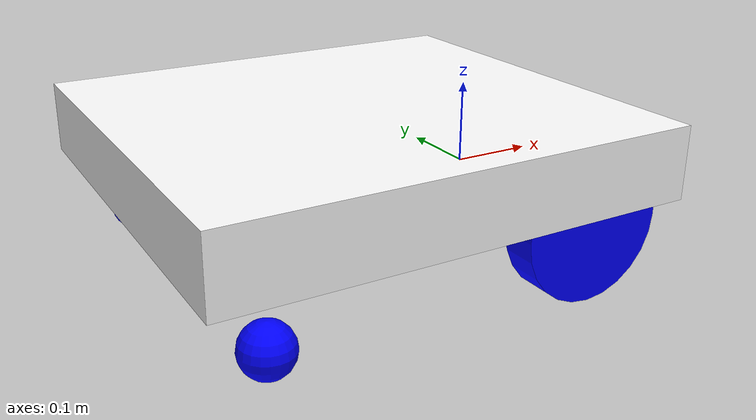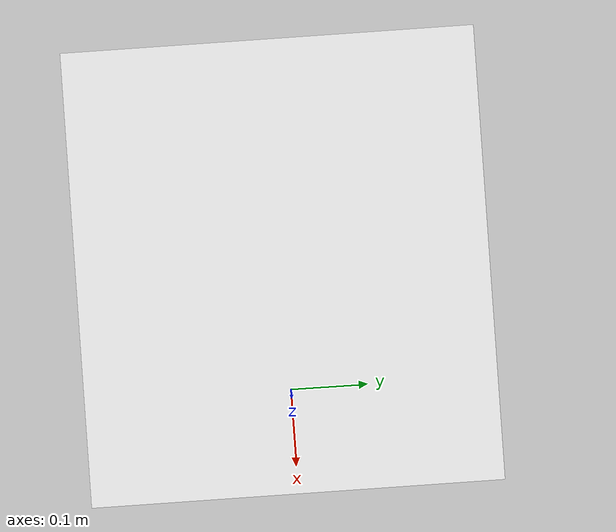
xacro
<?xml version="1.0"?>
<robot xmlns:xacro="http://www.ros.org/wiki/xacro">

    <xacro:include filename="inertial_macros.xacro"/>

    <material name="white">
        <color rgba="1 1 1 1" />
    </material>

    <material name="orange">
        <color rgba="1 0.3 0.1 1"/>
    </material>

    <material name="blue">
        <color rgba="0 0 1 1"/>
    </material>

    <material name="black">
        <color rgba="0 0 0 1"/>
    </material>

    <material name="red">
        <color rgba="1 0 0 1"/>
    </material>

    <!-- BASE LINK -->
    <link name="base_link">

    </link>

    <!-- CHASSIS LINK -->
    <joint name="chassis_joint" type="fixed">
        <parent link="base_link"/>
        <child link="chassis"/>
        <origin xyz="-0.16 0 0"/>
    </joint>

    <link name="chassis">
        <visual>
            <origin xyz="0 0 0.055"/>
            <geometry>
                <box size="0.55 0.50 0.085"/>
            </geometry>
            <material name="white"/>
        </visual>
        <collision>
            <origin xyz="0 0 0.055"/>
            <geometry>
                <box size="0.55 0.50 0.085"/>
            </geometry>
            <material name="white"/>
        </collision>
        <xacro:inertial_box mass="0.5" x="0.55" y="0.5" z="0.085">
            <origin xyz="0 0 0.055" rpy="0 0 0"/>
        </xacro:inertial_box>
    </link>

    <gazebo reference="chassis">
        <material>Gazebo/White</material>
    </gazebo>

    <!-- LEFT WHEEL -->
    <joint name="left_wheel_joint" type="continuous">
        <parent link="base_link"/>
        <child link="left_wheel"/>
        <origin xyz="0 0.22 0" rpy="-1.57079632679 0 0" />
        <axis xyz="0 0 1"/>
    </joint>

    <link name="left_wheel">
        <visual>
            <geometry>
                <cylinder radius="0.085" length="0.04"/>
            </geometry>
            <material name="blue"/>
        </visual>
        <collision>
            <geometry>
                <cylinder radius="0.085" length="0.04"/>
            </geometry>
        </collision>
        <xacro:inertial_cylinder mass="0.5" length="0.04" radius="0.085">
            <origin xyz="0 0 0" rpy="0 0 0"/>
        </xacro:inertial_cylinder>
    </link>

    <gazebo reference="left_wheel">
        <material>Gazebo/Blue</material>
    </gazebo>

    <joint name="right_wheel_joint" type="continuous">
        <parent link="base_link"/>
        <child link="right_wheel"/>
        <origin xyz="0 -0.22 0" rpy="1.57079632679 0 0" />
        <axis xyz="0 0 -1"/>
    </joint>

    <link name="right_wheel">
        <visual>
            <geometry>
                <cylinder radius="0.085" length="0.04"/>
            </geometry>
            <material name="blue"/>
        </visual>
        <collision>
            <geometry>
                <cylinder radius="0.085" length="0.04"/>
            </geometry>
        </collision>
        <xacro:inertial_cylinder mass="0.5" length="0.04" radius="0.085">
            <origin xyz="0 0 0" rpy="0 0 0"/>
        </xacro:inertial_cylinder>
    </link>

    <gazebo reference="right_wheel">
        <material>Gazebo/Blue</material>
    </gazebo>

    <!-- CASTER WHEELs -->

    <joint name="caster_wheel_joint_left" type="fixed">
        <parent link="chassis"/>
        <child link="caster_wheel_left"/>
        <origin xyz="-0.20 0.20 -0.06"/>
    </joint>

    <link name="caster_wheel_left">
        <visual>
            <geometry>
                <sphere radius="0.03"/>
            </geometry>
            <material name="blue"/>
        </visual>
        <collision>
            <geometry>
                <sphere radius="0.03"/>
            </geometry>
        </collision>
        <xacro:inertial_sphere mass="0.1" radius="0.03">
            <origin xyz="0 0 0" rpy="0 0 0"/>
        </xacro:inertial_sphere>
    </link>

    <gazebo reference="caster_wheel_left">
        <material>Gazebo/Blue</material>
    </gazebo>

    <joint name="caster_wheel_right_joint" type="fixed">
        <parent link="chassis"/>
        <child link="caster_wheel_right"/>
        <origin xyz="-0.20 -0.20 -0.06"/>
    </joint>

    <link name="caster_wheel_right">
        <visual>
            <geometry>
                <sphere radius="0.03"/>
            </geometry>
            <material name="blue"/>
        </visual>
        <collision>
            <geometry>
                <sphere radius="0.03"/>
            </geometry>
        </collision>
        <xacro:inertial_sphere mass="0.1" radius="0.03">
            <origin xyz="0 0 0" rpy="0 0 0"/>
        </xacro:inertial_sphere>
    </link>

    <gazebo reference="caster_wheel_right">
        <material>Gazebo/Blue</material>
    </gazebo>

</robot>
